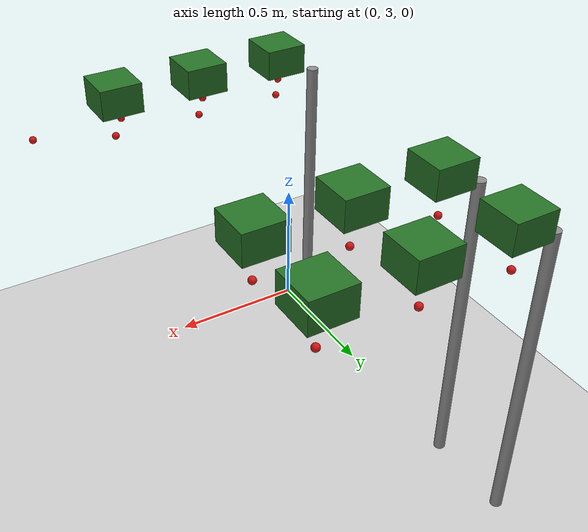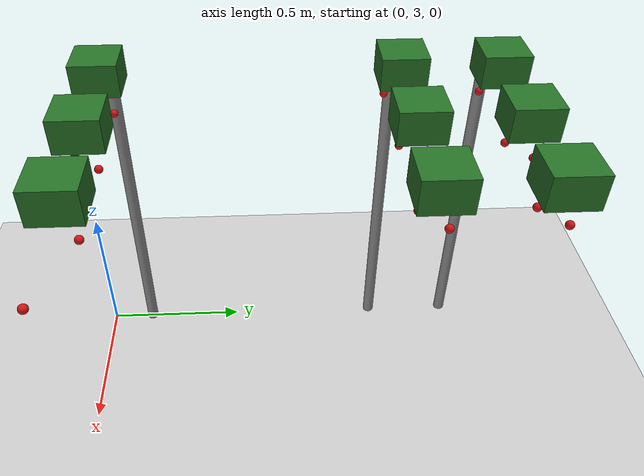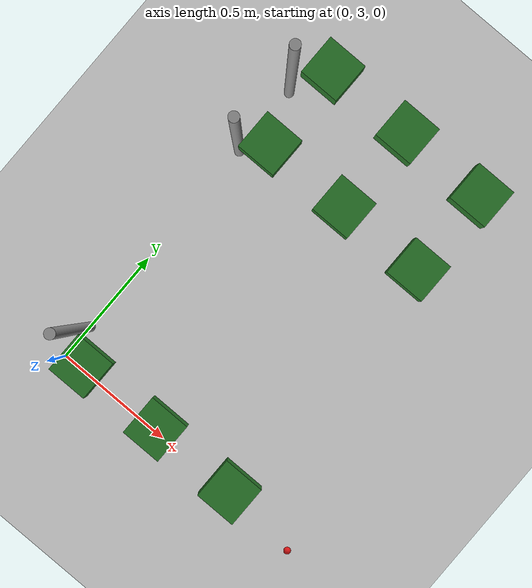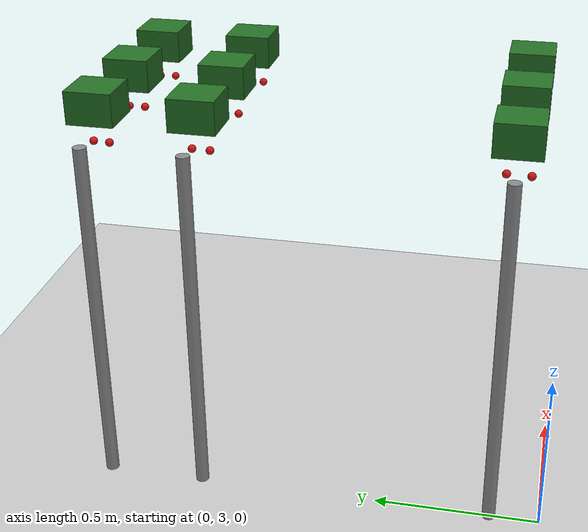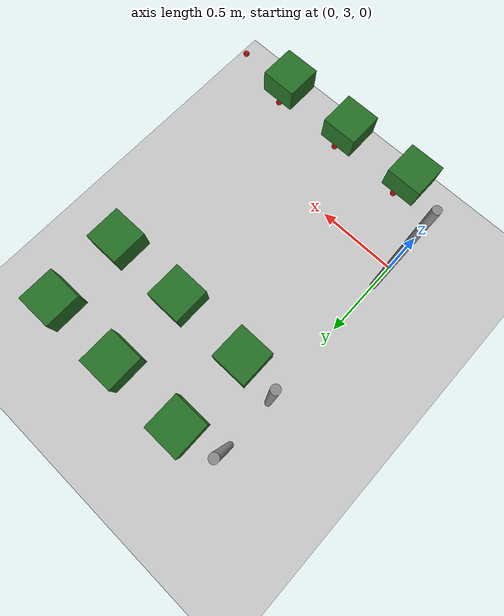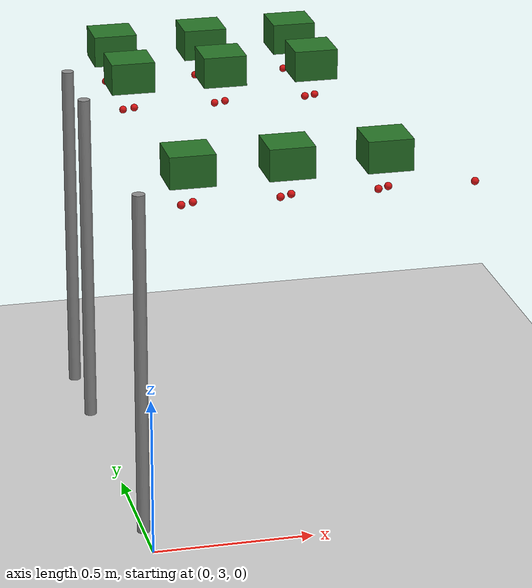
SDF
<sdf version="1.7">
 <world name="irish_polytunnel">
  <include><uri>model://sun</uri></include>
  <include><uri>model://ground_plane</uri></include>
  <model name="row3_L_post0">
   <static>true</static>
   <pose>0.000 4.050 0.550 0 0 0</pose>
   <link name="link">
    <collision name="collision">
     <geometry><cylinder><radius>0.02</radius><length>1.100</length></cylinder></geometry>
    </collision>
    <visual name="visual">
     <geometry><cylinder><radius>0.02</radius><length>1.100</length></cylinder></geometry>
     <material><ambient>0.5 0.5 0.5 1</ambient><diffuse>0.55 0.55 0.55 1</diffuse></material>
    </visual>
   </link>
  </model>
  <model name="row3_L_plant0_foliage">
   <static>true</static>
   <pose>0.150 4.050 1.180 0 0 0</pose>
   <link name="link">
    <visual name="visual">
     <geometry><box><size>0.14 0.14 0.10</size></box></geometry>
     <material><ambient>0.10 0.35 0.10 1</ambient><diffuse>0.15 0.45 0.15 1</diffuse></material>
    </visual>
   </link>
  </model>
  <model name="row3_L_plant0_berry_0">
   <static>true</static>
   <pose>0.120 4.010 1.070 0 0 0</pose>
   <link name="link">
    <visual name="visual">
     <geometry><sphere><radius>0.012</radius></sphere></geometry>
     <material><ambient>0.75 0.05 0.05 1</ambient><diffuse>0.85 0.08 0.08 1</diffuse></material>
    </visual>
   </link>
  </model>
  <model name="row3_L_plant0_berry_1">
   <static>true</static>
   <pose>0.170 4.080 1.050 0 0 0</pose>
   <link name="link">
    <visual name="visual">
     <geometry><sphere><radius>0.012</radius></sphere></geometry>
     <material><ambient>0.75 0.05 0.05 1</ambient><diffuse>0.85 0.08 0.08 1</diffuse></material>
    </visual>
   </link>
  </model>
  <model name="row3_L_plant1_foliage">
   <static>true</static>
   <pose>0.450 4.050 1.180 0 0 0</pose>
   <link name="link">
    <visual name="visual">
     <geometry><box><size>0.14 0.14 0.10</size></box></geometry>
     <material><ambient>0.10 0.35 0.10 1</ambient><diffuse>0.15 0.45 0.15 1</diffuse></material>
    </visual>
   </link>
  </model>
  <model name="row3_L_plant1_berry_0">
   <static>true</static>
   <pose>0.420 4.010 1.070 0 0 0</pose>
   <link name="link">
    <visual name="visual">
     <geometry><sphere><radius>0.012</radius></sphere></geometry>
     <material><ambient>0.75 0.05 0.05 1</ambient><diffuse>0.85 0.08 0.08 1</diffuse></material>
    </visual>
   </link>
  </model>
  <model name="row3_L_plant1_berry_1">
   <static>true</static>
   <pose>0.470 4.080 1.050 0 0 0</pose>
   <link name="link">
    <visual name="visual">
     <geometry><sphere><radius>0.012</radius></sphere></geometry>
     <material><ambient>0.75 0.05 0.05 1</ambient><diffuse>0.85 0.08 0.08 1</diffuse></material>
    </visual>
   </link>
  </model>
  <model name="row3_L_plant2_foliage">
   <static>true</static>
   <pose>0.750 4.050 1.180 0 0 0</pose>
   <link name="link">
    <visual name="visual">
     <geometry><box><size>0.14 0.14 0.10</size></box></geometry>
     <material><ambient>0.10 0.35 0.10 1</ambient><diffuse>0.15 0.45 0.15 1</diffuse></material>
    </visual>
   </link>
  </model>
  <model name="row3_L_plant2_berry_0">
   <static>true</static>
   <pose>0.720 4.010 1.070 0 0 0</pose>
   <link name="link">
    <visual name="visual">
     <geometry><sphere><radius>0.012</radius></sphere></geometry>
     <material><ambient>0.75 0.05 0.05 1</ambient><diffuse>0.85 0.08 0.08 1</diffuse></material>
    </visual>
   </link>
  </model>
  <model name="row3_L_plant2_berry_1">
   <static>true</static>
   <pose>0.770 4.080 1.050 0 0 0</pose>
   <link name="link">
    <visual name="visual">
     <geometry><sphere><radius>0.012</radius></sphere></geometry>
     <material><ambient>0.75 0.05 0.05 1</ambient><diffuse>0.85 0.08 0.08 1</diffuse></material>
    </visual>
   </link>
  </model>
  <model name="row3_R_post0">
   <static>true</static>
   <pose>0.000 3.150 0.550 0 0 0</pose>
   <link name="link">
    <collision name="collision">
     <geometry><cylinder><radius>0.02</radius><length>1.100</length></cylinder></geometry>
    </collision>
    <visual name="visual">
     <geometry><cylinder><radius>0.02</radius><length>1.100</length></cylinder></geometry>
     <material><ambient>0.5 0.5 0.5 1</ambient><diffuse>0.55 0.55 0.55 1</diffuse></material>
    </visual>
   </link>
  </model>
  <model name="row3_R_plant0_foliage">
   <static>true</static>
   <pose>0.150 3.150 1.180 0 0 0</pose>
   <link name="link">
    <visual name="visual">
     <geometry><box><size>0.14 0.14 0.10</size></box></geometry>
     <material><ambient>0.10 0.35 0.10 1</ambient><diffuse>0.15 0.45 0.15 1</diffuse></material>
    </visual>
   </link>
  </model>
  <model name="row3_R_plant0_berry_0">
   <static>true</static>
   <pose>0.120 3.110 1.070 0 0 0</pose>
   <link name="link">
    <visual name="visual">
     <geometry><sphere><radius>0.012</radius></sphere></geometry>
     <material><ambient>0.75 0.05 0.05 1</ambient><diffuse>0.85 0.08 0.08 1</diffuse></material>
    </visual>
   </link>
  </model>
  <model name="row3_R_plant0_berry_1">
   <static>true</static>
   <pose>0.170 3.180 1.050 0 0 0</pose>
   <link name="link">
    <visual name="visual">
     <geometry><sphere><radius>0.012</radius></sphere></geometry>
     <material><ambient>0.75 0.05 0.05 1</ambient><diffuse>0.85 0.08 0.08 1</diffuse></material>
    </visual>
   </link>
  </model>
  <model name="row3_R_plant1_foliage">
   <static>true</static>
   <pose>0.450 3.150 1.180 0 0 0</pose>
   <link name="link">
    <visual name="visual">
     <geometry><box><size>0.14 0.14 0.10</size></box></geometry>
     <material><ambient>0.10 0.35 0.10 1</ambient><diffuse>0.15 0.45 0.15 1</diffuse></material>
    </visual>
   </link>
  </model>
  <model name="row3_R_plant1_berry_0">
   <static>true</static>
   <pose>0.420 3.110 1.070 0 0 0</pose>
   <link name="link">
    <visual name="visual">
     <geometry><sphere><radius>0.012</radius></sphere></geometry>
     <material><ambient>0.75 0.05 0.05 1</ambient><diffuse>0.85 0.08 0.08 1</diffuse></material>
    </visual>
   </link>
  </model>
  <model name="row3_R_plant1_berry_1">
   <static>true</static>
   <pose>0.470 3.180 1.050 0 0 0</pose>
   <link name="link">
    <visual name="visual">
     <geometry><sphere><radius>0.012</radius></sphere></geometry>
     <material><ambient>0.75 0.05 0.05 1</ambient><diffuse>0.85 0.08 0.08 1</diffuse></material>
    </visual>
   </link>
  </model>
  <model name="row3_R_plant2_foliage">
   <static>true</static>
   <pose>0.750 3.150 1.180 0 0 0</pose>
   <link name="link">
    <visual name="visual">
     <geometry><box><size>0.14 0.14 0.10</size></box></geometry>
     <material><ambient>0.10 0.35 0.10 1</ambient><diffuse>0.15 0.45 0.15 1</diffuse></material>
    </visual>
   </link>
  </model>
  <model name="row3_R_plant2_berry_0">
   <static>true</static>
   <pose>0.720 3.110 1.070 0 0 0</pose>
   <link name="link">
    <visual name="visual">
     <geometry><sphere><radius>0.012</radius></sphere></geometry>
     <material><ambient>0.75 0.05 0.05 1</ambient><diffuse>0.85 0.08 0.08 1</diffuse></material>
    </visual>
   </link>
  </model>
  <model name="row3_R_plant2_berry_1">
   <static>true</static>
   <pose>0.770 3.180 1.050 0 0 0</pose>
   <link name="link">
    <visual name="visual">
     <geometry><sphere><radius>0.012</radius></sphere></geometry>
     <material><ambient>0.75 0.05 0.05 1</ambient><diffuse>0.85 0.08 0.08 1</diffuse></material>
    </visual>
   </link>
  </model>
  <model name="row3_R_plant3_berry_0">
   <static>true</static>
   <pose>1.020 3.110 1.070 0 0 0</pose>
   <link name="link">
    <visual name="visual">
     <geometry><sphere><radius>0.012</radius></sphere></geometry>
     <material><ambient>0.75 0.05 0.05 1</ambient><diffuse>0.85 0.08 0.08 1</diffuse></material>
    </visual>
   </link>
  </model>
  <model name="row4_R_post0">
   <static>true</static>
   <pose>0.000 4.350 0.550 0 0 0</pose>
   <link name="link">
    <collision name="collision">
     <geometry><cylinder><radius>0.02</radius><length>1.100</length></cylinder></geometry>
    </collision>
    <visual name="visual">
     <geometry><cylinder><radius>0.02</radius><length>1.100</length></cylinder></geometry>
     <material><ambient>0.5 0.5 0.5 1</ambient><diffuse>0.55 0.55 0.55 1</diffuse></material>
    </visual>
   </link>
  </model>
  <model name="row4_R_plant0_foliage">
   <static>true</static>
   <pose>0.150 4.350 1.180 0 0 0</pose>
   <link name="link">
    <visual name="visual">
     <geometry><box><size>0.14 0.14 0.10</size></box></geometry>
     <material><ambient>0.10 0.35 0.10 1</ambient><diffuse>0.15 0.45 0.15 1</diffuse></material>
    </visual>
   </link>
  </model>
  <model name="row4_R_plant0_berry_0">
   <static>true</static>
   <pose>0.120 4.310 1.070 0 0 0</pose>
   <link name="link">
    <visual name="visual">
     <geometry><sphere><radius>0.012</radius></sphere></geometry>
     <material><ambient>0.75 0.05 0.05 1</ambient><diffuse>0.85 0.08 0.08 1</diffuse></material>
    </visual>
   </link>
  </model>
  <model name="row4_R_plant0_berry_1">
   <static>true</static>
   <pose>0.170 4.380 1.050 0 0 0</pose>
   <link name="link">
    <visual name="visual">
     <geometry><sphere><radius>0.012</radius></sphere></geometry>
     <material><ambient>0.75 0.05 0.05 1</ambient><diffuse>0.85 0.08 0.08 1</diffuse></material>
    </visual>
   </link>
  </model>
  <model name="row4_R_plant1_foliage">
   <static>true</static>
   <pose>0.450 4.350 1.180 0 0 0</pose>
   <link name="link">
    <visual name="visual">
     <geometry><box><size>0.14 0.14 0.10</size></box></geometry>
     <material><ambient>0.10 0.35 0.10 1</ambient><diffuse>0.15 0.45 0.15 1</diffuse></material>
    </visual>
   </link>
  </model>
  <model name="row4_R_plant1_berry_0">
   <static>true</static>
   <pose>0.420 4.310 1.070 0 0 0</pose>
   <link name="link">
    <visual name="visual">
     <geometry><sphere><radius>0.012</radius></sphere></geometry>
     <material><ambient>0.75 0.05 0.05 1</ambient><diffuse>0.85 0.08 0.08 1</diffuse></material>
    </visual>
   </link>
  </model>
  <model name="row4_R_plant1_berry_1">
   <static>true</static>
   <pose>0.470 4.380 1.050 0 0 0</pose>
   <link name="link">
    <visual name="visual">
     <geometry><sphere><radius>0.012</radius></sphere></geometry>
     <material><ambient>0.75 0.05 0.05 1</ambient><diffuse>0.85 0.08 0.08 1</diffuse></material>
    </visual>
   </link>
  </model>
  <model name="row4_R_plant2_foliage">
   <static>true</static>
   <pose>0.750 4.350 1.180 0 0 0</pose>
   <link name="link">
    <visual name="visual">
     <geometry><box><size>0.14 0.14 0.10</size></box></geometry>
     <material><ambient>0.10 0.35 0.10 1</ambient><diffuse>0.15 0.45 0.15 1</diffuse></material>
    </visual>
   </link>
  </model>
  <model name="row4_R_plant2_berry_0">
   <static>true</static>
   <pose>0.720 4.310 1.070 0 0 0</pose>
   <link name="link">
    <visual name="visual">
     <geometry><sphere><radius>0.012</radius></sphere></geometry>
     <material><ambient>0.75 0.05 0.05 1</ambient><diffuse>0.85 0.08 0.08 1</diffuse></material>
    </visual>
   </link>
  </model>
  <model name="row4_R_plant2_berry_1">
   <static>true</static>
   <pose>0.770 4.380 1.050 0 0 0</pose>
   <link name="link">
    <visual name="visual">
     <geometry><sphere><radius>0.012</radius></sphere></geometry>
     <material><ambient>0.75 0.05 0.05 1</ambient><diffuse>0.85 0.08 0.08 1</diffuse></material>
    </visual>
   </link>
  </model>
 </world>
</sdf>
